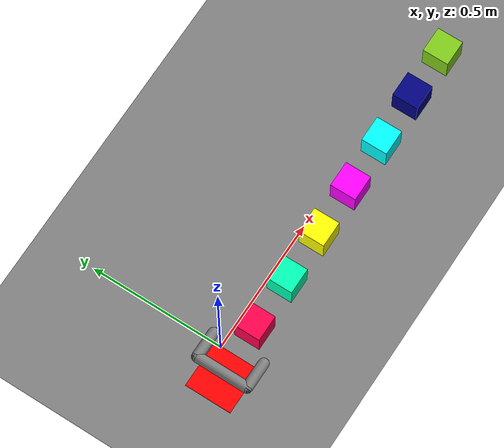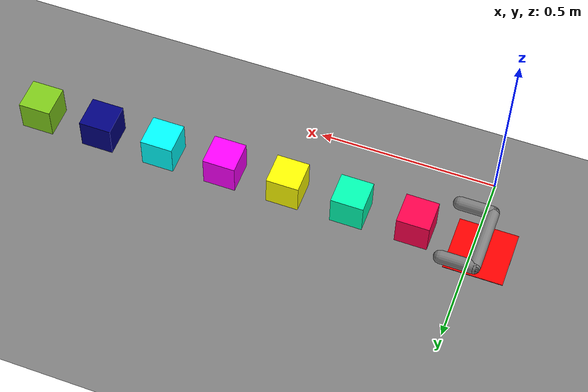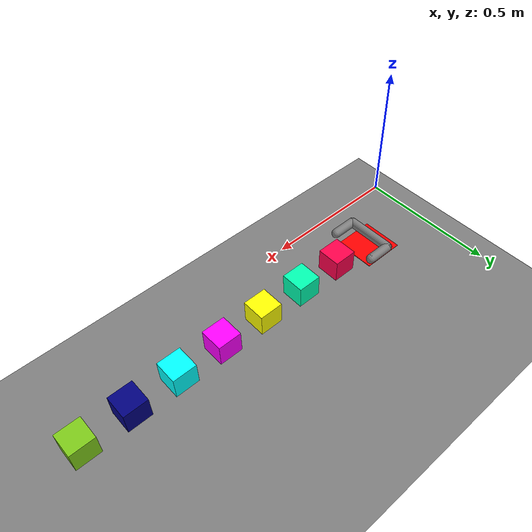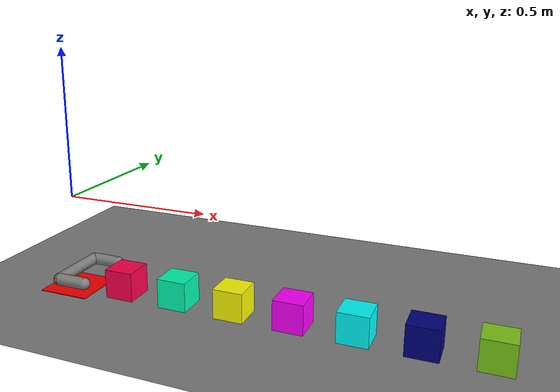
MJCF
<mujoco model="arm3d">
    <compiler angle="radian" coordinate="local" inertiafromgeom="true" meshdir="mesh" texturedir="textures" />
    <option gravity="0 0 0" integrator="Euler" iterations="20" timestep="0.01" />

    <default>
        <joint armature="0.04" damping="1" limited="true" />
        <geom conaffinity="0" condim="1" contype="0" density="10" friction=".8 .1 .1" margin="0.002" />
    </default>

    <worldbody>
        <light diffuse=".5 .5 .5" dir="0 0 -1" pos="0 0 3" />

        <geom conaffinity="1" contype="1" condim="1" name="table" pos="0 0.5 -0.325" size="10 10 0.1" type="plane" />

        <body name="wrist base" pos="0. 0. -0.2630">
            <joint axis="1 0 0" damping="0.5" name="wrist_slidex" pos="0 0 0" range="-10.3213 10.3" type="slide" />
            <joint axis="0 1 0" damping="0.5" name="wrist_slidey" pos="0 0 0" range="-10.3213 10.3" type="slide" />
            <joint axis="0 0 1" damping="0.5" name="wrist_hinge" pos="0 0 0" range="-10.3213 10.3" type="hinge" />
          <body name="tips_arm" pos="0 0 0">
            <geom conaffinity="1" contype="1" condim="1" name="tip_arml" pos="0.1 -0.1 0." size="0.01" type="sphere" />
            <geom conaffinity="1" contype="1" condim="1" name="tip_armr" pos="0.1 0.1 0." size="0.01" type="sphere" />
            <site name="arm" pos="0.02 0 0" size="0.001" />
          </body>
          <geom conaffinity="1" contype="1" condim="1" fromto="0 -0.1 0. 0.0 +0.1 0" size="0.02" type="capsule" />
          <geom conaffinity="1" contype="1" condim="1" fromto="0 -0.1 0. 0.1 -0.1 0" size="0.02" type="capsule" />
          <geom conaffinity="1" contype="1" condim="1" fromto="0 +0.1 0. 0.1 +0.1 0." size="0.02" type="capsule" />
        </body>

        <body name="obj1" pos="0.2 -0. -0.325">
            <joint axis="1 0 0" damping="1.5" name="obj1_slidex" pos="0 0 0.05" range="-10.3213 10.3" type="slide" />
            <joint axis="0 1 0" damping="1.5" name="obj1_slidey" pos="0 0 0.05" range="-10.3213 10.3" type="slide" />
            <geom conaffinity="1" contype="1" pos="0 0 0.05" density="0.001" size="0.05 0.05 0.05" rgba="1 0. 0.3 1" type="box" />
        </body>

        <body name="obj2" pos="0.4 -0. -0.325">
            <joint axis="1 0 0" damping="1.5" name="obj2_slidex" pos="0 0 0.05" range="-10.3213 10.3" type="slide" />
            <joint axis="0 1 0" damping="1.5" name="obj2_slidey" pos="0 0 0.05" range="-10.3213 10.3" type="slide" />
            <geom conaffinity="1" contype="1" pos="0 0 0.05" density="0.001" size="0.05 0.05 0.05" rgba="0. 1. 0.7 1" type="box" />
        </body>

        <body name="obj3" pos="0.6 0. -0.325">
            <joint axis="1 0 0" damping="1.5" name="obj3_slidex" pos="0 0 0.05" range="-10.3213 10.3" type="slide" />
            <joint axis="0 1 0" damping="1.5" name="obj3_slidey" pos="0 0 0.05" range="-10.3213 10.3" type="slide" />
            <geom conaffinity="1" contype="1" pos="0 0 0.05" density="0.001" size="0.05 0.05 0.05" rgba="1 1 0. 1" type="box" />
        </body>

        <body name="obj4" pos="0.8 0. -0.325">
            <joint axis="1 0 0" damping="1.5" name="obj4_slidex" pos="0 0 0.05" range="-10.3213 10.3" type="slide" />
            <joint axis="0 1 0" damping="1.5" name="obj4_slidey" pos="0 0 0.05" range="-10.3213 10.3" type="slide" />
            <geom conaffinity="1" contype="1" pos="0 0 0.05" density="0.001" size="0.05 0.05 0.05" rgba="1 0. 1 1" type="box" />
        </body>

        <body name="obj5" pos="1. 0. -0.325">
            <joint axis="1 0 0" damping="1.5" name="obj5_slidex" pos="0 0 0.05" range="-10.3213 10.3" type="slide" />
            <joint axis="0 1 0" damping="1.5" name="obj5_slidey" pos="0 0 0.05" range="-10.3213 10.3" type="slide" />
            <geom conaffinity="1" contype="1" pos="0 0 0.05" density="0.001" size="0.05 0.05 0.05" rgba="0. 1 1 1" type="box" />
        </body>

        <body name="obj6" pos="1.2 0. -0.325">
            <joint axis="1 0 0" damping="1.5" name="obj6_slidex" pos="0 0 0.05" range="-10.3213 10.3" type="slide" />
            <joint axis="0 1 0" damping="1.5" name="obj6_slidey" pos="0 0 0.05" range="-10.3213 10.3" type="slide" />
            <geom conaffinity="1" contype="1" pos="0 0 0.05" density="0.001" size="0.05 0.05 0.05" rgba="0. 0. 0.5 1" type="box" />
        </body>

        <body name="obj7" pos="1.4 0. -0.325">
            <joint axis="1 0 0" damping="1.5" name="obj7_slidex" pos="0 0 0.05" range="-10.3213 10.3" type="slide" />
            <joint axis="0 1 0" damping="1.5" name="obj7_slidey" pos="0 0 0.05" range="-10.3213 10.3" type="slide" />
            <geom conaffinity="1" contype="1" pos="0 0 0.05" density="0.001" size="0.05 0.05 0.05" rgba=".5 .8 .1 1" type="box" />
        </body>
        <body name="target" pos="0.0 0. -0.375">
            <geom conaffinity="0" contype="0" pos="0 0 0.05" density="0.001" size="0.09 0.09 0.001" rgba="1. 0. 0. 1" type="box" />
        </body>

    </worldbody>

    <actuator>
        <motor ctrllimited="true" ctrlrange="-2.0 2.0" joint="wrist_slidex" />
        <motor ctrllimited="true" ctrlrange="-2.0 2.0" joint="wrist_slidey" />
        <motor ctrllimited="true" ctrlrange="-2.0 2.0" joint="wrist_hinge" />
    </actuator>

</mujoco>
